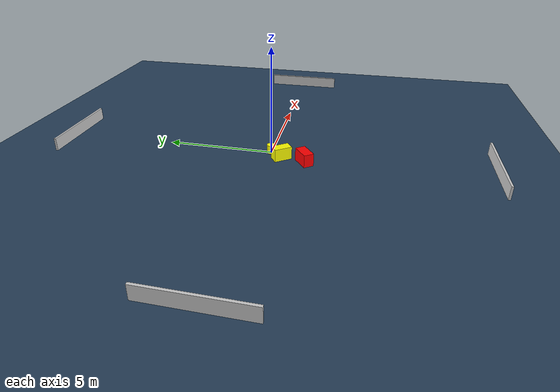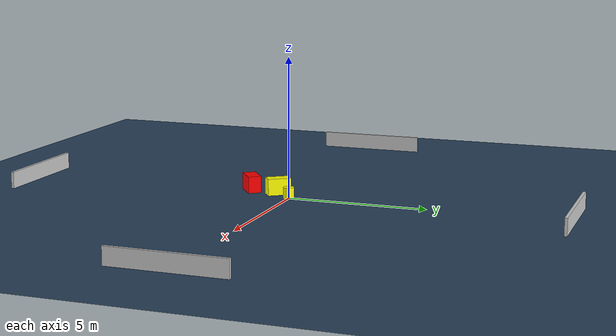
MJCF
<?xml version="1.0" ?>
<mujoco model="generated_environment">
  <option timestep="0.01" integrator="RK4" cone="elliptic"/>
  <default>
    <geom density="1"/>
  </default>
  <asset>
    <texture builtin="gradient" height="3072" name="skybox" rgb1="0.3 0.5 0.7" rgb2="0 0 0" type="skybox" width="512"/>
    <texture builtin="checker" height="300" name="groundplane" rgb1="0.2 0.3 0.4" rgb2="0.1 0.2 0.3" type="2d" width="300"/>
    <material name="groundplane" reflectance="0.2" texrepeat="5 5" texture="groundplane"/>
  </asset>
  <worldbody>
    <light dir="0 0 -1" directional="true" pos="0 0 1.5"/>
    <geom condim="3" friction="0.5 0.005 0.001" material="groundplane" name="floor" pos="0 0 0" size="0 0 0.05" type="plane"/>
    <body name="walls">
      <geom name="wall_1" condim="4" pos="-10.0 0.0 0.3" rgba="0.800000011920929 0.800000011920929 0.800000011920929 1.0" size="0.05 2.0 0.3" type="box"/>
      <geom name="wall_2" condim="4" pos="10.0 0.0 0.3" rgba="0.800000011920929 0.800000011920929 0.800000011920929 1.0" size="0.05 2.0 0.3" type="box"/>
      <geom name="wall_3" condim="4" pos="0.0 -10.0 0.3" rgba="0.800000011920929 0.800000011920929 0.800000011920929 1.0" size="2.0 0.05 0.3" type="box"/>
      <geom name="wall_4" condim="4" pos="0.0 10.0 0.3" rgba="0.800000011920929 0.800000011920929 0.800000011920929 1.0" size="2.0 0.05 0.3" type="box"/>
    </body>
    <body name="robot">
      <joint name="joint_x" type="slide" pos="0 0 0" axis="1 0 0"/>
      <joint name="joint_y" type="slide" pos="0 0 0" axis="0 1 0"/>
      <geom name="robot" type="cylinder" pos="0.0 0.0 0.2" size="0.2 0.2 0.0" mass="5.0" friction="1.0 0.005 0.0001" condim="4" rgba="1.0 1.0 0.0 1.0"/>
    </body>
    <body name="obstacle_1_movable">
      <geom name="obstacle_1_movable" condim="4" pos="-0.5019130028378502 -0.5915378318770829 0.3" euler="0 0 36.295687866928624" friction="0.0 0.005 0.001" rgba="1.0 1.0 0.0 1.0" size="0.22167966104620512 0.41797422001930473 0.3" type="box" mass="0.1"/>
      <joint type="free"/>
    </body>
    <body name="obstacle_2_static">
      <geom name="obstacle_2_static" condim="4" pos="-0.7014215419457616 -1.6779324641061224 0.3" euler="0 0 36.396920444132505" friction="0.0 0.005 0.001" rgba="1.0 0.0 0.0 1.0" size="0.42624465240235754 0.23788962326811008 0.3" type="box"/>
    </body>
  </worldbody>
  <actuator>
    <motor name="actuator_x" joint="joint_x" gear="1" ctrlrange="-1 1"/>
    <motor name="actuator_y" joint="joint_y" gear="1" ctrlrange="-1 1"/>
  </actuator>
</mujoco>
